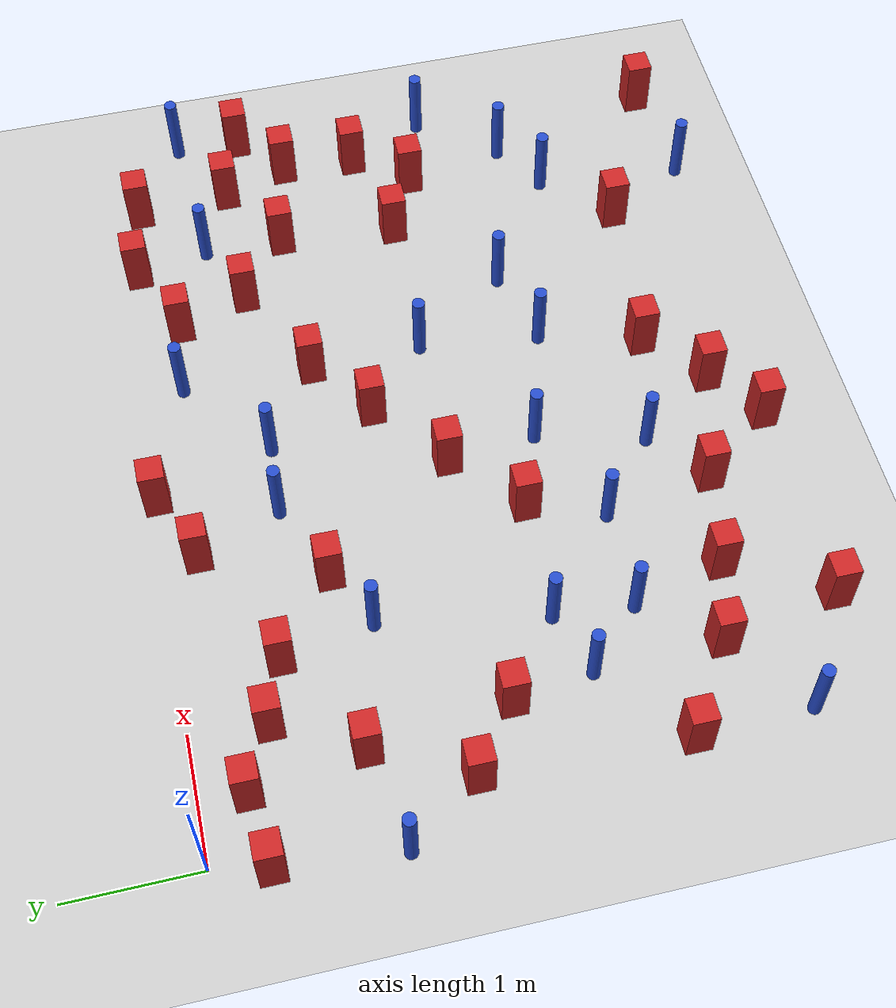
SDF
<sdf version="1.6">
 <world name="default">
  <model name="ground_plane">
   <static>1</static>
   <link name="link">
    <collision name="collision">
     <geometry><plane><normal>0 0 1</normal><size>100 100</size></plane></geometry>
     <surface><friction><ode><mu>100</mu><mu2>50</mu2></ode></friction></surface>
    </collision>
    <visual name="visual">
     <cast_shadows>0</cast_shadows>
     <geometry><plane><normal>0 0 1</normal><size>100 100</size></plane></geometry>
     <material>
      <ambient>1.0 1.0 1.0 1.0</ambient>
      <diffuse>0.8 0.8 0.8 1.0</diffuse>
      <specular>0.01 0.01 0.01 1.000000</specular>
     </material>
    </visual>
   </link>
  </model>
  <model name="square_post_obstacle2">
   <static>true</static>
   <pose>0.221696725759 -1.90196667918 8.22691968438e-08 7.2212513382e-06 -7.54495500217e-07 2.29674213826e-05</pose>
   <link name="link">
    <pose>0 0 0.25 0 -0 0</pose>
    <inertial>
     <mass>100</mass>
     <inertia>
      <ixx>0.166667</ixx>
      <ixy>0</ixy>
      <ixz>0</ixz>
      <iyy>0.166667</iyy>
      <iyz>0</iyz>
      <izz>0.166667</izz>
     </inertia>
    </inertial>
    <collision name="collision"><geometry><box><size>.2 .2 .5</size></box></geometry></collision>
    <visual name="visual">
     <geometry><box><size>.2 .2 .5</size></box></geometry>
     <material>
      <script><name>Gazebo/Red</name><uri>file://media/materials/scripts/gazebo.material</uri></script>
     </material>
    </visual>
   </link>
  </model>
  <model name="pole_obstacle10">
   <static>true</static>
   <pose>4.44744639522 -3.07453793529 2.88873142074e-08 -9.90536690245e-09 4.6021994898e-07 -1.20965994966e-07</pose>
   <link name="link">
    <pose>0 0 0.3 0 -0 0</pose>
    <inertial>
     <mass>1</mass>
     <inertia><ixx>0.145833</ixx><ixy>0</ixy><ixz>0</ixz><iyy>0.145833</iyy><iyz>0</iyz><izz>0.125</izz></inertia>
    </inertial>
    <collision name="collision">
     <geometry><cylinder><radius>0.05</radius><length>.6</length></cylinder></geometry>
    </collision>
    <visual name="visual">
     <geometry><cylinder><radius>0.05</radius><length>.6</length></cylinder></geometry>
     <material>
      <script><name>Gazebo/Blue</name><uri>file://media/materials/scripts/gazebo.material</uri></script>
     </material>
    </visual>
   </link>
  </model>
  <model name="pole_obstacle13">
   <static>true</static>
   <pose>3.20647940545 -0.969881316611 2.88873142074e-08 -9.90536689217e-09 4.60219949004e-07 -1.20965994953e-07</pose>
   <link name="link">
    <pose>0 0 0.3 0 -0 0</pose>
    <inertial>
     <mass>1</mass>
     <inertia><ixx>0.145833</ixx><ixy>0</ixy><ixz>0</ixz><iyy>0.145833</iyy><iyz>0</iyz><izz>0.125</izz></inertia>
    </inertial>
    <collision name="collision">
     <geometry><cylinder><radius>0.05</radius><length>.6</length></cylinder></geometry>
    </collision>
    <visual name="visual">
     <geometry><cylinder><radius>0.05</radius><length>.6</length></cylinder></geometry>
     <material>
      <script><name>Gazebo/Blue</name><uri>file://media/materials/scripts/gazebo.material</uri></script>
     </material>
    </visual>
   </link>
  </model>
  <model name="square_post_obstacle10">
   <static>true</static>
   <pose>3.87964929043 -1.40677528351 8.22691968438e-08 7.2212513382e-06 -7.54495500217e-07 2.29674213826e-05</pose>
   <link name="link">
    <pose>0 0 0.25 0 -0 0</pose>
    <inertial>
     <mass>100</mass>
     <inertia>
      <ixx>0.166667</ixx>
      <ixy>0</ixy>
      <ixz>0</ixz>
      <iyy>0.166667</iyy>
      <iyz>0</iyz>
      <izz>0.166667</izz>
     </inertia>
    </inertial>
    <collision name="collision"><geometry><box><size>.2 .2 .5</size></box></geometry></collision>
    <visual name="visual">
     <geometry><box><size>.2 .2 .5</size></box></geometry>
     <material>
      <script><name>Gazebo/Red</name><uri>file://media/materials/scripts/gazebo.material</uri></script>
     </material>
    </visual>
   </link>
  </model>
  <model name="square_post_obstacle13">
   <static>true</static>
   <pose>1.01495852833 -4.76390678284 8.22691968438e-08 7.2212513382e-06 -7.54495500217e-07 2.29674213826e-05</pose>
   <link name="link">
    <pose>0 0 0.25 0 -0 0</pose>
    <inertial>
     <mass>100</mass>
     <inertia>
      <ixx>0.166667</ixx>
      <ixy>0</ixy>
      <ixz>0</ixz>
      <iyy>0.166667</iyy>
      <iyz>0</iyz>
      <izz>0.166667</izz>
     </inertia>
    </inertial>
    <collision name="collision"><geometry><box><size>.2 .2 .5</size></box></geometry></collision>
    <visual name="visual">
     <geometry><box><size>.2 .2 .5</size></box></geometry>
     <material>
      <script><name>Gazebo/Red</name><uri>file://media/materials/scripts/gazebo.material</uri></script>
     </material>
    </visual>
   </link>
  </model>
  <model name="square_post_obstacle15">
   <static>true</static>
   <pose>2.78507070101 -2.26868465725 8.22691968438e-08 7.2212513382e-06 -7.54495500217e-07 2.29674213826e-05</pose>
   <link name="link">
    <pose>0 0 0.25 0 -0 0</pose>
    <inertial>
     <mass>100</mass>
     <inertia>
      <ixx>0.166667</ixx>
      <ixy>0</ixy>
      <ixz>0</ixz>
      <iyy>0.166667</iyy>
      <iyz>0</iyz>
      <izz>0.166667</izz>
     </inertia>
    </inertial>
    <collision name="collision"><geometry><box><size>.2 .2 .5</size></box></geometry></collision>
    <visual name="visual">
     <geometry><box><size>.2 .2 .5</size></box></geometry>
     <material>
      <script><name>Gazebo/Red</name><uri>file://media/materials/scripts/gazebo.material</uri></script>
     </material>
    </visual>
   </link>
  </model>
  <model name="pole_obstacle22">
   <static>true</static>
   <pose>1.30878013132 -2.71242042378 2.88873142074e-08 -9.90536689791e-09 4.6021994899e-07 -1.20965994959e-07</pose>
   <link name="link">
    <pose>0 0 0.3 0 -0 0</pose>
    <inertial>
     <mass>1</mass>
     <inertia><ixx>0.145833</ixx><ixy>0</ixy><ixz>0</ixz><iyy>0.145833</iyy><iyz>0</iyz><izz>0.125</izz></inertia>
    </inertial>
    <collision name="collision">
     <geometry><cylinder><radius>0.05</radius><length>.6</length></cylinder></geometry>
    </collision>
    <visual name="visual">
     <geometry><cylinder><radius>0.05</radius><length>.6</length></cylinder></geometry>
     <material>
      <script><name>Gazebo/Blue</name><uri>file://media/materials/scripts/gazebo.material</uri></script>
     </material>
    </visual>
   </link>
  </model>
  <model name="pole_obstacle23">
   <static>true</static>
   <pose>3.92016130045 -0.384027470345 2.88873142074e-08 -9.90536689307e-09 4.60219949002e-07 -1.20965994954e-07</pose>
   <link name="link">
    <pose>0 0 0.3 0 -0 0</pose>
    <inertial>
     <mass>1</mass>
     <inertia><ixx>0.145833</ixx><ixy>0</ixy><ixz>0</ixz><iyy>0.145833</iyy><iyz>0</iyz><izz>0.125</izz></inertia>
    </inertial>
    <collision name="collision">
     <geometry><cylinder><radius>0.05</radius><length>.6</length></cylinder></geometry>
    </collision>
    <visual name="visual">
     <geometry><cylinder><radius>0.05</radius><length>.6</length></cylinder></geometry>
     <material>
      <script><name>Gazebo/Blue</name><uri>file://media/materials/scripts/gazebo.material</uri></script>
     </material>
    </visual>
   </link>
  </model>
  <model name="pole_obstacle28">
   <static>true</static>
   <pose>0.811466825566 -2.88347436311 2.88873142074e-08 -9.90536689636e-09 4.60219948994e-07 -1.20965994958e-07</pose>
   <link name="link">
    <pose>0 0 0.3 0 -0 0</pose>
    <inertial>
     <mass>1</mass>
     <inertia><ixx>0.145833</ixx><ixy>0</ixy><ixz>0</ixz><iyy>0.145833</iyy><iyz>0</iyz><izz>0.125</izz></inertia>
    </inertial>
    <collision name="collision">
     <geometry><cylinder><radius>0.05</radius><length>.6</length></cylinder></geometry>
    </collision>
    <visual name="visual">
     <geometry><cylinder><radius>0.05</radius><length>.6</length></cylinder></geometry>
     <material>
      <script><name>Gazebo/Blue</name><uri>file://media/materials/scripts/gazebo.material</uri></script>
     </material>
    </visual>
   </link>
  </model>
  <model name="square_post_obstacle25">
   <static>true</static>
   <pose>0.166305199922 -3.43480673049 8.22691968438e-08 7.2212513382e-06 -7.54495500217e-07 2.29674213826e-05</pose>
   <link name="link">
    <pose>0 0 0.25 0 -0 0</pose>
    <inertial>
     <mass>100</mass>
     <inertia>
      <ixx>0.166667</ixx>
      <ixy>0</ixy>
      <ixz>0</ixz>
      <iyy>0.166667</iyy>
      <iyz>0</iyz>
      <izz>0.166667</izz>
     </inertia>
    </inertial>
    <collision name="collision"><geometry><box><size>.2 .2 .5</size></box></geometry></collision>
    <visual name="visual">
     <geometry><box><size>.2 .2 .5</size></box></geometry>
     <material>
      <script><name>Gazebo/Red</name><uri>file://media/materials/scripts/gazebo.material</uri></script>
     </material>
    </visual>
   </link>
  </model>
  <model name="square_post_obstacle27">
   <static>true</static>
   <pose>0.830600635842 -3.84449933875 8.22691968438e-08 7.2212513382e-06 -7.54495500217e-07 2.29674213826e-05</pose>
   <link name="link">
    <pose>0 0 0.25 0 -0 0</pose>
    <inertial>
     <mass>100</mass>
     <inertia>
      <ixx>0.166667</ixx>
      <ixy>0</ixy>
      <ixz>0</ixz>
      <iyy>0.166667</iyy>
      <iyz>0</iyz>
      <izz>0.166667</izz>
     </inertia>
    </inertial>
    <collision name="collision"><geometry><box><size>.2 .2 .5</size></box></geometry></collision>
    <visual name="visual">
     <geometry><box><size>.2 .2 .5</size></box></geometry>
     <material>
      <script><name>Gazebo/Red</name><uri>file://media/materials/scripts/gazebo.material</uri></script>
     </material>
    </visual>
   </link>
  </model>
  <model name="square_post_obstacle29">
   <static>true</static>
   <pose>5.85678291339 -1.02913637126 8.22691968438e-08 7.2212513382e-06 -7.54495500217e-07 2.29674213826e-05</pose>
   <link name="link">
    <pose>0 0 0.25 0 -0 0</pose>
    <inertial>
     <mass>100</mass>
     <inertia>
      <ixx>0.166667</ixx>
      <ixy>0</ixy>
      <ixz>0</ixz>
      <iyy>0.166667</iyy>
      <iyz>0</iyz>
      <izz>0.166667</izz>
     </inertia>
    </inertial>
    <collision name="collision"><geometry><box><size>.2 .2 .5</size></box></geometry></collision>
    <visual name="visual">
     <geometry><box><size>.2 .2 .5</size></box></geometry>
     <material>
      <script><name>Gazebo/Red</name><uri>file://media/materials/scripts/gazebo.material</uri></script>
     </material>
    </visual>
   </link>
  </model>
  <model name="pole_obstacle42">
   <static>true</static>
   <pose>5.28140339499 -0.765569922579 2.88873142074e-08 -9.90536689837e-09 4.60219948989e-07 -1.2096599496e-07</pose>
   <link name="link">
    <pose>0 0 0.3 0 -0 0</pose>
    <inertial>
     <mass>1</mass>
     <inertia><ixx>0.145833</ixx><ixy>0</ixy><ixz>0</ixz><iyy>0.145833</iyy><iyz>0</iyz><izz>0.125</izz></inertia>
    </inertial>
    <collision name="collision">
     <geometry><cylinder><radius>0.05</radius><length>.6</length></cylinder></geometry>
    </collision>
    <visual name="visual">
     <geometry><cylinder><radius>0.05</radius><length>.6</length></cylinder></geometry>
     <material>
      <script><name>Gazebo/Blue</name><uri>file://media/materials/scripts/gazebo.material</uri></script>
     </material>
    </visual>
   </link>
  </model>
  <model name="square_post_obstacle32">
   <static>true</static>
   <pose>6.00994409245 -2.15194811357 8.22691968438e-08 7.2212513382e-06 -7.54495500217e-07 2.29674213826e-05</pose>
   <link name="link">
    <pose>0 0 0.25 0 -0 0</pose>
    <inertial>
     <mass>100</mass>
     <inertia>
      <ixx>0.166667</ixx>
      <ixy>0</ixy>
      <ixz>0</ixz>
      <iyy>0.166667</iyy>
      <iyz>0</iyz>
      <izz>0.166667</izz>
     </inertia>
    </inertial>
    <collision name="collision"><geometry><box><size>.2 .2 .5</size></box></geometry></collision>
    <visual name="visual">
     <geometry><box><size>.2 .2 .5</size></box></geometry>
     <material>
      <script><name>Gazebo/Red</name><uri>file://media/materials/scripts/gazebo.material</uri></script>
     </material>
    </visual>
   </link>
  </model>
  <model name="square_post_obstacle36">
   <static>true</static>
   <pose>2.65250312018 -4.7603489703 8.22691968438e-08 7.22125133819e-06 -7.54495500217e-07 2.29674213826e-05</pose>
   <link name="link">
    <pose>0 0 0.25 0 -0 0</pose>
    <inertial>
     <mass>100</mass>
     <inertia>
      <ixx>0.166667</ixx>
      <ixy>0</ixy>
      <ixz>0</ixz>
      <iyy>0.166667</iyy>
      <iyz>0</iyz>
      <izz>0.166667</izz>
     </inertia>
    </inertial>
    <collision name="collision"><geometry><box><size>.2 .2 .5</size></box></geometry></collision>
    <visual name="visual">
     <geometry><box><size>.2 .2 .5</size></box></geometry>
     <material>
      <script><name>Gazebo/Red</name><uri>file://media/materials/scripts/gazebo.material</uri></script>
     </material>
    </visual>
   </link>
  </model>
  <model name="square_post_obstacle43">
   <static>true</static>
   <pose>3.09585587317 -4.44070377407 8.22691968438e-08 7.22125133819e-06 -7.54495500217e-07 2.29674213826e-05</pose>
   <link name="link">
    <pose>0 0 0.25 0 -0 0</pose>
    <inertial>
     <mass>100</mass>
     <inertia>
      <ixx>0.166667</ixx>
      <ixy>0</ixy>
      <ixz>0</ixz>
      <iyy>0.166667</iyy>
      <iyz>0</iyz>
      <izz>0.166667</izz>
     </inertia>
    </inertial>
    <collision name="collision"><geometry><box><size>.2 .2 .5</size></box></geometry></collision>
    <visual name="visual">
     <geometry><box><size>.2 .2 .5</size></box></geometry>
     <material>
      <script><name>Gazebo/Red</name><uri>file://media/materials/scripts/gazebo.material</uri></script>
     </material>
    </visual>
   </link>
  </model>
  <model name="pole_obstacle57">
   <static>true</static>
   <pose>5.84670499186 -3.41439952924 2.88873142074e-08 -9.90536690245e-09 4.6021994898e-07 -1.20965994966e-07</pose>
   <link name="link">
    <pose>0 0 0.3 0 -0 0</pose>
    <inertial>
     <mass>1</mass>
     <inertia><ixx>0.145833</ixx><ixy>0</ixy><ixz>0</ixz><iyy>0.145833</iyy><iyz>0</iyz><izz>0.125</izz></inertia>
    </inertial>
    <collision name="collision">
     <geometry><cylinder><radius>0.05</radius><length>.6</length></cylinder></geometry>
    </collision>
    <visual name="visual">
     <geometry><cylinder><radius>0.05</radius><length>.6</length></cylinder></geometry>
     <material>
      <script><name>Gazebo/Blue</name><uri>file://media/materials/scripts/gazebo.material</uri></script>
     </material>
    </visual>
   </link>
  </model>
  <model name="square_post_obstacle58">
   <static>true</static>
   <pose>5.80784810153 -0.286426129212 8.22691968438e-08 7.2212513382e-06 -7.54495500217e-07 2.29674213826e-05</pose>
   <link name="link">
    <pose>0 0 0.25 0 -0 0</pose>
    <inertial>
     <mass>100</mass>
     <inertia>
      <ixx>0.166667</ixx>
      <ixy>0</ixy>
      <ixz>0</ixz>
      <iyy>0.166667</iyy>
      <iyz>0</iyz>
      <izz>0.166667</izz>
     </inertia>
    </inertial>
    <collision name="collision"><geometry><box><size>.2 .2 .5</size></box></geometry></collision>
    <visual name="visual">
     <geometry><box><size>.2 .2 .5</size></box></geometry>
     <material>
      <script><name>Gazebo/Red</name><uri>file://media/materials/scripts/gazebo.material</uri></script>
     </material>
    </visual>
   </link>
  </model>
  <model name="square_post_obstacle65">
   <static>true</static>
   <pose>2.19465060153 -4.17465338669 8.22691968438e-08 7.22125133819e-06 -7.54495500217e-07 2.29674213826e-05</pose>
   <link name="link">
    <pose>0 0 0.25 0 -0 0</pose>
    <inertial>
     <mass>100</mass>
     <inertia>
      <ixx>0.166667</ixx>
      <ixy>0</ixy>
      <ixz>0</ixz>
      <iyy>0.166667</iyy>
      <iyz>0</iyz>
      <izz>0.166667</izz>
     </inertia>
    </inertial>
    <collision name="collision"><geometry><box><size>.2 .2 .5</size></box></geometry></collision>
    <visual name="visual">
     <geometry><box><size>.2 .2 .5</size></box></geometry>
     <material>
      <script><name>Gazebo/Red</name><uri>file://media/materials/scripts/gazebo.material</uri></script>
     </material>
    </visual>
   </link>
  </model>
  <model name="square_post_obstacle74">
   <static>true</static>
   <pose>2.9303197492 -0.0503939318438 8.22691968438e-08 7.2212513382e-06 -7.54495500217e-07 2.29674213826e-05</pose>
   <link name="link">
    <pose>0 0 0.25 0 -0 0</pose>
    <inertial>
     <mass>100</mass>
     <inertia>
      <ixx>0.166667</ixx>
      <ixy>0</ixy>
      <ixz>0</ixz>
      <iyy>0.166667</iyy>
      <iyz>0</iyz>
      <izz>0.166667</izz>
     </inertia>
    </inertial>
    <collision name="collision"><geometry><box><size>.2 .2 .5</size></box></geometry></collision>
    <visual name="visual">
     <geometry><box><size>.2 .2 .5</size></box></geometry>
     <material>
      <script><name>Gazebo/Red</name><uri>file://media/materials/scripts/gazebo.material</uri></script>
     </material>
    </visual>
   </link>
  </model>
  <model name="square_post_obstacle77">
   <static>true</static>
   <pose>3.37311689947 -1.79389922679 8.22691968438e-08 7.2212513382e-06 -7.54495500217e-07 2.29674213826e-05</pose>
   <link name="link">
    <pose>0 0 0.25 0 -0 0</pose>
    <inertial>
     <mass>100</mass>
     <inertia>
      <ixx>0.166667</ixx>
      <ixy>0</ixy>
      <ixz>0</ixz>
      <iyy>0.166667</iyy>
      <iyz>0</iyz>
      <izz>0.166667</izz>
     </inertia>
    </inertial>
    <collision name="collision"><geometry><box><size>.2 .2 .5</size></box></geometry></collision>
    <visual name="visual">
     <geometry><box><size>.2 .2 .5</size></box></geometry>
     <material>
      <script><name>Gazebo/Red</name><uri>file://media/materials/scripts/gazebo.material</uri></script>
     </material>
    </visual>
   </link>
  </model>
  <model name="square_post_obstacle105">
   <static>true</static>
   <pose>0.582364051498 -1.19817092457 8.22691968438e-08 7.2212513382e-06 -7.54495500217e-07 2.29674213826e-05</pose>
   <link name="link">
    <pose>0 0 0.25 0 -0 0</pose>
    <inertial>
     <mass>100</mass>
     <inertia>
      <ixx>0.166667</ixx>
      <ixy>0</ixy>
      <ixz>0</ixz>
      <iyy>0.166667</iyy>
      <iyz>0</iyz>
      <izz>0.166667</izz>
     </inertia>
    </inertial>
    <collision name="collision"><geometry><box><size>.2 .2 .5</size></box></geometry></collision>
    <visual name="visual">
     <geometry><box><size>.2 .2 .5</size></box></geometry>
     <material>
      <script><name>Gazebo/Red</name><uri>file://media/materials/scripts/gazebo.material</uri></script>
     </material>
    </visual>
   </link>
  </model>
  <model name="pole_obstacle111">
   <static>true</static>
   <pose>3.79788021907 -3.25358248323 2.88873142074e-08 -9.90536690232e-09 4.6021994898e-07 -1.20965994968e-07</pose>
   <link name="link">
    <pose>0 0 0.3 0 -0 0</pose>
    <inertial>
     <mass>1</mass>
     <inertia><ixx>0.145833</ixx><ixy>0</ixy><ixz>0</ixz><iyy>0.145833</iyy><iyz>0</iyz><izz>0.125</izz></inertia>
    </inertial>
    <collision name="collision">
     <geometry><cylinder><radius>0.05</radius><length>.6</length></cylinder></geometry>
    </collision>
    <visual name="visual">
     <geometry><cylinder><radius>0.05</radius><length>.6</length></cylinder></geometry>
     <material>
      <script><name>Gazebo/Blue</name><uri>file://media/materials/scripts/gazebo.material</uri></script>
     </material>
    </visual>
   </link>
  </model>
  <model name="square_post_obstacle106">
   <static>true</static>
   <pose>6.1894856688 -4.75824440381 8.22691968438e-08 7.2212513382e-06 -7.54495500217e-07 2.29674213826e-05</pose>
   <link name="link">
    <pose>0 0 0.25 0 -0 0</pose>
    <inertial>
     <mass>100</mass>
     <inertia>
      <ixx>0.166667</ixx>
      <ixy>0</ixy>
      <ixz>0</ixz>
      <iyy>0.166667</iyy>
      <iyz>0</iyz>
      <izz>0.166667</izz>
     </inertia>
    </inertial>
    <collision name="collision"><geometry><box><size>.2 .2 .5</size></box></geometry></collision>
    <visual name="visual">
     <geometry><box><size>.2 .2 .5</size></box></geometry>
     <material>
      <script><name>Gazebo/Red</name><uri>file://media/materials/scripts/gazebo.material</uri></script>
     </material>
    </visual>
   </link>
  </model>
  <model name="square_post_obstacle113">
   <static>true</static>
   <pose>1.44450811187 -4.02098398119 8.22691968438e-08 7.2212513382e-06 -7.54495500217e-07 2.29674213826e-05</pose>
   <link name="link">
    <pose>0 0 0.25 0 -0 0</pose>
    <inertial>
     <mass>100</mass>
     <inertia>
      <ixx>0.166667</ixx>
      <ixy>0</ixy>
      <ixz>0</ixz>
      <iyy>0.166667</iyy>
      <iyz>0</iyz>
      <izz>0.166667</izz>
     </inertia>
    </inertial>
    <collision name="collision"><geometry><box><size>.2 .2 .5</size></box></geometry></collision>
    <visual name="visual">
     <geometry><box><size>.2 .2 .5</size></box></geometry>
     <material>
      <script><name>Gazebo/Red</name><uri>file://media/materials/scripts/gazebo.material</uri></script>
     </material>
    </visual>
   </link>
  </model>
  <model name="square_post_obstacle114">
   <static>true</static>
   <pose>2.00074187929 -1.20188396415 8.22691968438e-08 7.2212513382e-06 -7.54495500217e-07 2.29674213826e-05</pose>
   <link name="link">
    <pose>0 0 0.25 0 -0 0</pose>
    <inertial>
     <mass>100</mass>
     <inertia>
      <ixx>0.166667</ixx>
      <ixy>0</ixy>
      <ixz>0</ixz>
      <iyy>0.166667</iyy>
      <iyz>0</iyz>
      <izz>0.166667</izz>
     </inertia>
    </inertial>
    <collision name="collision"><geometry><box><size>.2 .2 .5</size></box></geometry></collision>
    <visual name="visual">
     <geometry><box><size>.2 .2 .5</size></box></geometry>
     <material>
      <script><name>Gazebo/Red</name><uri>file://media/materials/scripts/gazebo.material</uri></script>
     </material>
    </visual>
   </link>
  </model>
  <model name="square_post_obstacle115">
   <static>true</static>
   <pose>5.24961079246 -1.40252046274 8.22691968438e-08 7.2212513382e-06 -7.54495500217e-07 2.29674213826e-05</pose>
   <link name="link">
    <pose>0 0 0.25 0 -0 0</pose>
    <inertial>
     <mass>100</mass>
     <inertia>
      <ixx>0.166667</ixx>
      <ixy>0</ixy>
      <ixz>0</ixz>
      <iyy>0.166667</iyy>
      <iyz>0</iyz>
      <izz>0.166667</izz>
     </inertia>
    </inertial>
    <collision name="collision"><geometry><box><size>.2 .2 .5</size></box></geometry></collision>
    <visual name="visual">
     <geometry><box><size>.2 .2 .5</size></box></geometry>
     <material>
      <script><name>Gazebo/Red</name><uri>file://media/materials/scripts/gazebo.material</uri></script>
     </material>
    </visual>
   </link>
  </model>
  <model name="pole_obstacle123">
   <static>true</static>
   <pose>2.86610676553 -2.97985032487 2.88873142074e-08 -9.90536690232e-09 4.6021994898e-07 -1.20965994968e-07</pose>
   <link name="link">
    <pose>0 0 0.3 0 -0 0</pose>
    <inertial>
     <mass>1</mass>
     <inertia><ixx>0.145833</ixx><ixy>0</ixy><ixz>0</ixz><iyy>0.145833</iyy><iyz>0</iyz><izz>0.125</izz></inertia>
    </inertial>
    <collision name="collision">
     <geometry><cylinder><radius>0.05</radius><length>.6</length></cylinder></geometry>
    </collision>
    <visual name="visual">
     <geometry><cylinder><radius>0.05</radius><length>.6</length></cylinder></geometry>
     <material>
      <script><name>Gazebo/Blue</name><uri>file://media/materials/scripts/gazebo.material</uri></script>
     </material>
    </visual>
   </link>
  </model>
  <model name="pole_obstacle124">
   <static>true</static>
   <pose>1.54351494037 -1.43942092355 2.88873142074e-08 -9.90536689672e-09 4.60219948993e-07 -1.20965994959e-07</pose>
   <link name="link">
    <pose>0 0 0.3 0 -0 0</pose>
    <inertial>
     <mass>1</mass>
     <inertia><ixx>0.145833</ixx><ixy>0</ixy><ixz>0</ixz><iyy>0.145833</iyy><iyz>0</iyz><izz>0.125</izz></inertia>
    </inertial>
    <collision name="collision">
     <geometry><cylinder><radius>0.05</radius><length>.6</length></cylinder></geometry>
    </collision>
    <visual name="visual">
     <geometry><cylinder><radius>0.05</radius><length>.6</length></cylinder></geometry>
     <material>
      <script><name>Gazebo/Blue</name><uri>file://media/materials/scripts/gazebo.material</uri></script>
     </material>
    </visual>
   </link>
  </model>
  <model name="square_post_obstacle131">
   <static>true</static>
   <pose>4.51902779913 -0.45291762828 8.22691968438e-08 7.2212513382e-06 -7.54495500217e-07 2.29674213826e-05</pose>
   <link name="link">
    <pose>0 0 0.25 0 -0 0</pose>
    <inertial>
     <mass>100</mass>
     <inertia>
      <ixx>0.166667</ixx>
      <ixy>0</ixy>
      <ixz>0</ixz>
      <iyy>0.166667</iyy>
      <iyz>0</iyz>
      <izz>0.166667</izz>
     </inertia>
    </inertial>
    <collision name="collision"><geometry><box><size>.2 .2 .5</size></box></geometry></collision>
    <visual name="visual">
     <geometry><box><size>.2 .2 .5</size></box></geometry>
     <material>
      <script><name>Gazebo/Red</name><uri>file://media/materials/scripts/gazebo.material</uri></script>
     </material>
    </visual>
   </link>
  </model>
  <model name="pole_obstacle138">
   <static>true</static>
   <pose>6.48682149479 -0.697818769324 2.88873142074e-08 -9.90536689837e-09 4.60219948989e-07 -1.2096599496e-07</pose>
   <link name="link">
    <pose>0 0 0.3 0 -0 0</pose>
    <inertial>
     <mass>1</mass>
     <inertia><ixx>0.145833</ixx><ixy>0</ixy><ixz>0</ixz><iyy>0.145833</iyy><iyz>0</iyz><izz>0.125</izz></inertia>
    </inertial>
    <collision name="collision">
     <geometry><cylinder><radius>0.05</radius><length>.6</length></cylinder></geometry>
    </collision>
    <visual name="visual">
     <geometry><cylinder><radius>0.05</radius><length>.6</length></cylinder></geometry>
     <material>
      <script><name>Gazebo/Blue</name><uri>file://media/materials/scripts/gazebo.material</uri></script>
     </material>
    </visual>
   </link>
  </model>
  <model name="square_post_obstacle136">
   <static>true</static>
   <pose>5.68326928076 -2.58777643879 8.22691968438e-08 7.2212513382e-06 -7.54495500217e-07 2.29674213826e-05</pose>
   <link name="link">
    <pose>0 0 0.25 0 -0 0</pose>
    <inertial>
     <mass>100</mass>
     <inertia>
      <ixx>0.166667</ixx>
      <ixy>0</ixy>
      <ixz>0</ixz>
      <iyy>0.166667</iyy>
      <iyz>0</iyz>
      <izz>0.166667</izz>
     </inertia>
    </inertial>
    <collision name="collision"><geometry><box><size>.2 .2 .5</size></box></geometry></collision>
    <visual name="visual">
     <geometry><box><size>.2 .2 .5</size></box></geometry>
     <material>
      <script><name>Gazebo/Red</name><uri>file://media/materials/scripts/gazebo.material</uri></script>
     </material>
    </visual>
   </link>
  </model>
  <model name="square_post_obstacle139">
   <static>true</static>
   <pose>0.716136669484 -2.26138801194 8.22691968438e-08 7.2212513382e-06 -7.54495500217e-07 2.29674213826e-05</pose>
   <link name="link">
    <pose>0 0 0.25 0 -0 0</pose>
    <inertial>
     <mass>100</mass>
     <inertia>
      <ixx>0.166667</ixx>
      <ixy>0</ixy>
      <ixz>0</ixz>
      <iyy>0.166667</iyy>
      <iyz>0</iyz>
      <izz>0.166667</izz>
     </inertia>
    </inertial>
    <collision name="collision"><geometry><box><size>.2 .2 .5</size></box></geometry></collision>
    <visual name="visual">
     <geometry><box><size>.2 .2 .5</size></box></geometry>
     <material>
      <script><name>Gazebo/Red</name><uri>file://media/materials/scripts/gazebo.material</uri></script>
     </material>
    </visual>
   </link>
  </model>
  <model name="square_post_obstacle144">
   <static>true</static>
   <pose>2.25584475896 -2.7462883628 8.22691968438e-08 7.2212513382e-06 -7.54495500217e-07 2.29674213826e-05</pose>
   <link name="link">
    <pose>0 0 0.25 0 -0 0</pose>
    <inertial>
     <mass>100</mass>
     <inertia>
      <ixx>0.166667</ixx>
      <ixy>0</ixy>
      <ixz>0</ixz>
      <iyy>0.166667</iyy>
      <iyz>0</iyz>
      <izz>0.166667</izz>
     </inertia>
    </inertial>
    <collision name="collision"><geometry><box><size>.2 .2 .5</size></box></geometry></collision>
    <visual name="visual">
     <geometry><box><size>.2 .2 .5</size></box></geometry>
     <material>
      <script><name>Gazebo/Red</name><uri>file://media/materials/scripts/gazebo.material</uri></script>
     </material>
    </visual>
   </link>
  </model>
  <model name="square_post_obstacle148">
   <static>true</static>
   <pose>4.71403665073 -1.00902836665 8.22691968438e-08 7.2212513382e-06 -7.54495500217e-07 2.29674213826e-05</pose>
   <link name="link">
    <pose>0 0 0.25 0 -0 0</pose>
    <inertial>
     <mass>100</mass>
     <inertia>
      <ixx>0.166667</ixx>
      <ixy>0</ixy>
      <ixz>0</ixz>
      <iyy>0.166667</iyy>
      <iyz>0</iyz>
      <izz>0.166667</izz>
     </inertia>
    </inertial>
    <collision name="collision"><geometry><box><size>.2 .2 .5</size></box></geometry></collision>
    <visual name="visual">
     <geometry><box><size>.2 .2 .5</size></box></geometry>
     <material>
      <script><name>Gazebo/Red</name><uri>file://media/materials/scripts/gazebo.material</uri></script>
     </material>
    </visual>
   </link>
  </model>
  <model name="square_post_obstacle149">
   <static>true</static>
   <pose>4.91745936443 -4.18810105361 8.22691968438e-08 7.2212513382e-06 -7.54495500217e-07 2.29674213826e-05</pose>
   <link name="link">
    <pose>0 0 0.25 0 -0 0</pose>
    <inertial>
     <mass>100</mass>
     <inertia>
      <ixx>0.166667</ixx>
      <ixy>0</ixy>
      <ixz>0</ixz>
      <iyy>0.166667</iyy>
      <iyz>0</iyz>
      <izz>0.166667</izz>
     </inertia>
    </inertial>
    <collision name="collision"><geometry><box><size>.2 .2 .5</size></box></geometry></collision>
    <visual name="visual">
     <geometry><box><size>.2 .2 .5</size></box></geometry>
     <material>
      <script><name>Gazebo/Red</name><uri>file://media/materials/scripts/gazebo.material</uri></script>
     </material>
    </visual>
   </link>
  </model>
  <model name="pole_obstacle155">
   <static>true</static>
   <pose>2.63786565152 -0.934307538385 2.88873142074e-08 -9.90536689285e-09 4.60219949002e-07 -1.20965994953e-07</pose>
   <link name="link">
    <pose>0 0 0.3 0 -0 0</pose>
    <inertial>
     <mass>1</mass>
     <inertia><ixx>0.145833</ixx><ixy>0</ixy><ixz>0</ixz><iyy>0.145833</iyy><iyz>0</iyz><izz>0.125</izz></inertia>
    </inertial>
    <collision name="collision">
     <geometry><cylinder><radius>0.05</radius><length>.6</length></cylinder></geometry>
    </collision>
    <visual name="visual">
     <geometry><cylinder><radius>0.05</radius><length>.6</length></cylinder></geometry>
     <material>
      <script><name>Gazebo/Blue</name><uri>file://media/materials/scripts/gazebo.material</uri></script>
     </material>
    </visual>
   </link>
  </model>
  <model name="pole_obstacle158">
   <static>true</static>
   <pose>-0.181271678866 -1.34311170385 2.88873142074e-08 -9.90536689666e-09 4.60219948993e-07 -1.20965994958e-07</pose>
   <link name="link">
    <pose>0 0 0.3 0 -0 0</pose>
    <inertial>
     <mass>1</mass>
     <inertia><ixx>0.145833</ixx><ixy>0</ixy><ixz>0</ixz><iyy>0.145833</iyy><iyz>0</iyz><izz>0.125</izz></inertia>
    </inertial>
    <collision name="collision">
     <geometry><cylinder><radius>0.05</radius><length>.6</length></cylinder></geometry>
    </collision>
    <visual name="visual">
     <geometry><cylinder><radius>0.05</radius><length>.6</length></cylinder></geometry>
     <material>
      <script><name>Gazebo/Blue</name><uri>file://media/materials/scripts/gazebo.material</uri></script>
     </material>
    </visual>
   </link>
  </model>
  <model name="pole_obstacle160">
   <static>true</static>
   <pose>2.64158265085 -3.81976203589 2.88873142074e-08 -9.90536690232e-09 4.6021994898e-07 -1.20965994968e-07</pose>
   <link name="link">
    <pose>0 0 0.3 0 -0 0</pose>
    <inertial>
     <mass>1</mass>
     <inertia><ixx>0.145833</ixx><ixy>0</ixy><ixz>0</ixz><iyy>0.145833</iyy><iyz>0</iyz><izz>0.125</izz></inertia>
    </inertial>
    <collision name="collision">
     <geometry><cylinder><radius>0.05</radius><length>.6</length></cylinder></geometry>
    </collision>
    <visual name="visual">
     <geometry><cylinder><radius>0.05</radius><length>.6</length></cylinder></geometry>
     <material>
      <script><name>Gazebo/Blue</name><uri>file://media/materials/scripts/gazebo.material</uri></script>
     </material>
    </visual>
   </link>
  </model>
  <model name="square_post_obstacle165">
   <static>true</static>
   <pose>3.5611774992 -4.03857598353 8.22691968438e-08 7.2212513382e-06 -7.54495500217e-07 2.29674213826e-05</pose>
   <link name="link">
    <pose>0 0 0.25 0 -0 0</pose>
    <inertial>
     <mass>100</mass>
     <inertia>
      <ixx>0.166667</ixx>
      <ixy>0</ixy>
      <ixz>0</ixz>
      <iyy>0.166667</iyy>
      <iyz>0</iyz>
      <izz>0.166667</izz>
     </inertia>
    </inertial>
    <collision name="collision"><geometry><box><size>.2 .2 .5</size></box></geometry></collision>
    <visual name="visual">
     <geometry><box><size>.2 .2 .5</size></box></geometry>
     <material>
      <script><name>Gazebo/Red</name><uri>file://media/materials/scripts/gazebo.material</uri></script>
     </material>
    </visual>
   </link>
  </model>
  <model name="square_post_obstacle168">
   <static>true</static>
   <pose>0.922980692725 -0.573208600753 8.22691968438e-08 7.2212513382e-06 -7.54495500217e-07 2.29674213826e-05</pose>
   <link name="link">
    <pose>0 0 0.25 0 -0 0</pose>
    <inertial>
     <mass>100</mass>
     <inertia>
      <ixx>0.166667</ixx>
      <ixy>0</ixy>
      <ixz>0</ixz>
      <iyy>0.166667</iyy>
      <iyz>0</iyz>
      <izz>0.166667</izz>
     </inertia>
    </inertial>
    <collision name="collision"><geometry><box><size>.2 .2 .5</size></box></geometry></collision>
    <visual name="visual">
     <geometry><box><size>.2 .2 .5</size></box></geometry>
     <material>
      <script><name>Gazebo/Red</name><uri>file://media/materials/scripts/gazebo.material</uri></script>
     </material>
    </visual>
   </link>
  </model>
  <model name="pole_obstacle172">
   <static>true</static>
   <pose>2.04710958424 -3.3354388443 2.88873142074e-08 -9.9053669043e-09 4.60219948975e-07 -1.2096599497e-07</pose>
   <link name="link">
    <pose>0 0 0.3 0 -0 0</pose>
    <inertial>
     <mass>1</mass>
     <inertia><ixx>0.145833</ixx><ixy>0</ixy><ixz>0</ixz><iyy>0.145833</iyy><iyz>0</iyz><izz>0.125</izz></inertia>
    </inertial>
    <collision name="collision">
     <geometry><cylinder><radius>0.05</radius><length>.6</length></cylinder></geometry>
    </collision>
    <visual name="visual">
     <geometry><cylinder><radius>0.05</radius><length>.6</length></cylinder></geometry>
     <material>
      <script><name>Gazebo/Blue</name><uri>file://media/materials/scripts/gazebo.material</uri></script>
     </material>
    </visual>
   </link>
  </model>
  <model name="pole_obstacle175">
   <static>true</static>
   <pose>1.25847237358 -3.32038193484 2.88873142074e-08 -9.90536689791e-09 4.6021994899e-07 -1.20965994959e-07</pose>
   <link name="link">
    <pose>0 0 0.3 0 -0 0</pose>
    <inertial>
     <mass>1</mass>
     <inertia><ixx>0.145833</ixx><ixy>0</ixy><ixz>0</ixz><iyy>0.145833</iyy><iyz>0</iyz><izz>0.125</izz></inertia>
    </inertial>
    <collision name="collision">
     <geometry><cylinder><radius>0.05</radius><length>.6</length></cylinder></geometry>
    </collision>
    <visual name="visual">
     <geometry><cylinder><radius>0.05</radius><length>.6</length></cylinder></geometry>
     <material>
      <script><name>Gazebo/Blue</name><uri>file://media/materials/scripts/gazebo.material</uri></script>
     </material>
    </visual>
   </link>
  </model>
  <model name="pole_obstacle176">
   <static>true</static>
   <pose>3.91424641323 -2.29832447065 2.88873142074e-08 -9.90536690232e-09 4.6021994898e-07 -1.20965994968e-07</pose>
   <link name="link">
    <pose>0 0 0.3 0 -0 0</pose>
    <inertial>
     <mass>1</mass>
     <inertia><ixx>0.145833</ixx><ixy>0</ixy><ixz>0</ixz><iyy>0.145833</iyy><iyz>0</iyz><izz>0.125</izz></inertia>
    </inertial>
    <collision name="collision">
     <geometry><cylinder><radius>0.05</radius><length>.6</length></cylinder></geometry>
    </collision>
    <visual name="visual">
     <geometry><cylinder><radius>0.05</radius><length>.6</length></cylinder></geometry>
     <material>
      <script><name>Gazebo/Blue</name><uri>file://media/materials/scripts/gazebo.material</uri></script>
     </material>
    </visual>
   </link>
  </model>
  <model name="square_post_obstacle183">
   <static>true</static>
   <pose>5.15199504203 -0.190140890217 8.22691968438e-08 7.2212513382e-06 -7.54495500217e-07 2.29674213826e-05</pose>
   <link name="link">
    <pose>0 0 0.25 0 -0 0</pose>
    <inertial>
     <mass>100</mass>
     <inertia>
      <ixx>0.166667</ixx>
      <ixy>0</ixy>
      <ixz>0</ixz>
      <iyy>0.166667</iyy>
      <iyz>0</iyz>
      <izz>0.166667</izz>
     </inertia>
    </inertial>
    <collision name="collision"><geometry><box><size>.2 .2 .5</size></box></geometry></collision>
    <visual name="visual">
     <geometry><box><size>.2 .2 .5</size></box></geometry>
     <material>
      <script><name>Gazebo/Red</name><uri>file://media/materials/scripts/gazebo.material</uri></script>
     </material>
    </visual>
   </link>
  </model>
  <model name="pole_obstacle184">
   <static>true</static>
   <pose>6.31834777058 -2.79126300844 2.88873142074e-08 -9.90536690245e-09 4.6021994898e-07 -1.20965994966e-07</pose>
   <link name="link">
    <pose>0 0 0.3 0 -0 0</pose>
    <inertial>
     <mass>1</mass>
     <inertia><ixx>0.145833</ixx><ixy>0</ixy><ixz>0</ixz><iyy>0.145833</iyy><iyz>0</iyz><izz>0.125</izz></inertia>
    </inertial>
    <collision name="collision">
     <geometry><cylinder><radius>0.05</radius><length>.6</length></cylinder></geometry>
    </collision>
    <visual name="visual">
     <geometry><cylinder><radius>0.05</radius><length>.6</length></cylinder></geometry>
     <material>
      <script><name>Gazebo/Blue</name><uri>file://media/materials/scripts/gazebo.material</uri></script>
     </material>
    </visual>
   </link>
  </model>
  <model name="square_post_obstacle186">
   <static>true</static>
   <pose>2.36985274153 -0.27996572425 8.22691968438e-08 7.2212513382e-06 -7.54495500217e-07 2.29674213826e-05</pose>
   <link name="link">
    <pose>0 0 0.25 0 -0 0</pose>
    <inertial>
     <mass>100</mass>
     <inertia>
      <ixx>0.166667</ixx>
      <ixy>0</ixy>
      <ixz>0</ixz>
      <iyy>0.166667</iyy>
      <iyz>0</iyz>
      <izz>0.166667</izz>
     </inertia>
    </inertial>
    <collision name="collision"><geometry><box><size>.2 .2 .5</size></box></geometry></collision>
    <visual name="visual">
     <geometry><box><size>.2 .2 .5</size></box></geometry>
     <material>
      <script><name>Gazebo/Red</name><uri>file://media/materials/scripts/gazebo.material</uri></script>
     </material>
    </visual>
   </link>
  </model>
  <model name="square_post_obstacle190">
   <static>true</static>
   <pose>6.43796082237 -1.20971878127 8.22691968438e-08 7.2212513382e-06 -7.54495500217e-07 2.29674213826e-05</pose>
   <link name="link">
    <pose>0 0 0.25 0 -0 0</pose>
    <inertial>
     <mass>100</mass>
     <inertia>
      <ixx>0.166667</ixx>
      <ixy>0</ixy>
      <ixz>0</ixz>
      <iyy>0.166667</iyy>
      <iyz>0</iyz>
      <izz>0.166667</izz>
     </inertia>
    </inertial>
    <collision name="collision"><geometry><box><size>.2 .2 .5</size></box></geometry></collision>
    <visual name="visual">
     <geometry><box><size>.2 .2 .5</size></box></geometry>
     <material>
      <script><name>Gazebo/Red</name><uri>file://media/materials/scripts/gazebo.material</uri></script>
     </material>
    </visual>
   </link>
  </model>
  <model name="square_post_obstacle199">
   <static>true</static>
   <pose>1.40241291383 -0.732597499478 8.22691968438e-08 7.2212513382e-06 -7.54495500217e-07 2.29674213826e-05</pose>
   <link name="link">
    <pose>0 0 0.25 0 -0 0</pose>
    <inertial>
     <mass>100</mass>
     <inertia>
      <ixx>0.166667</ixx>
      <ixy>0</ixy>
      <ixz>0</ixz>
      <iyy>0.166667</iyy>
      <iyz>0</iyz>
      <izz>0.166667</izz>
     </inertia>
    </inertial>
    <collision name="collision"><geometry><box><size>.2 .2 .5</size></box></geometry></collision>
    <visual name="visual">
     <geometry><box><size>.2 .2 .5</size></box></geometry>
     <material>
      <script><name>Gazebo/Red</name><uri>file://media/materials/scripts/gazebo.material</uri></script>
     </material>
    </visual>
   </link>
  </model>
  <model name="square_post_obstacle201">
   <static>true</static>
   <pose>-0.0930241257797 -0.41858909526 8.22691968438e-08 7.2212513382e-06 -7.54495500217e-07 2.29674213826e-05</pose>
   <link name="link">
    <pose>0 0 0.25 0 -0 0</pose>
    <inertial>
     <mass>100</mass>
     <inertia>
      <ixx>0.166667</ixx>
      <ixy>0</ixy>
      <ixz>0</ixz>
      <iyy>0.166667</iyy>
      <iyz>0</iyz>
      <izz>0.166667</izz>
     </inertia>
    </inertial>
    <collision name="collision"><geometry><box><size>.2 .2 .5</size></box></geometry></collision>
    <visual name="visual">
     <geometry><box><size>.2 .2 .5</size></box></geometry>
     <material>
      <script><name>Gazebo/Red</name><uri>file://media/materials/scripts/gazebo.material</uri></script>
     </material>
    </visual>
   </link>
  </model>
  <model name="square_post_obstacle203">
   <static>true</static>
   <pose>0.454921977804 -0.347961177248 8.22691968438e-08 7.22125133819e-06 -7.54495500217e-07 2.29674213826e-05</pose>
   <link name="link">
    <pose>0 0 0.25 0 -0 0</pose>
    <inertial>
     <mass>100</mass>
     <inertia>
      <ixx>0.166667</ixx>
      <ixy>0</ixy>
      <ixz>0</ixz>
      <iyy>0.166667</iyy>
      <iyz>0</iyz>
      <izz>0.166667</izz>
     </inertia>
    </inertial>
    <collision name="collision"><geometry><box><size>.2 .2 .5</size></box></geometry></collision>
    <visual name="visual">
     <geometry><box><size>.2 .2 .5</size></box></geometry>
     <material>
      <script><name>Gazebo/Red</name><uri>file://media/materials/scripts/gazebo.material</uri></script>
     </material>
    </visual>
   </link>
  </model>
  <model name="square_post_obstacle205">
   <static>true</static>
   <pose>6.03855750036 -1.55428268704 8.22691968438e-08 7.2212513382e-06 -7.54495500217e-07 2.29674213826e-05</pose>
   <link name="link">
    <pose>0 0 0.25 0 -0 0</pose>
    <inertial>
     <mass>100</mass>
     <inertia>
      <ixx>0.166667</ixx>
      <ixy>0</ixy>
      <ixz>0</ixz>
      <iyy>0.166667</iyy>
      <iyz>0</iyz>
      <izz>0.166667</izz>
     </inertia>
    </inertial>
    <collision name="collision"><geometry><box><size>.2 .2 .5</size></box></geometry></collision>
    <visual name="visual">
     <geometry><box><size>.2 .2 .5</size></box></geometry>
     <material>
      <script><name>Gazebo/Red</name><uri>file://media/materials/scripts/gazebo.material</uri></script>
     </material>
    </visual>
   </link>
  </model>
  <model name="square_post_obstacle207">
   <static>true</static>
   <pose>5.16164546131 -2.34108595116 8.22691968438e-08 7.2212513382e-06 -7.54495500217e-07 2.29674213826e-05</pose>
   <link name="link">
    <pose>0 0 0.25 0 -0 0</pose>
    <inertial>
     <mass>100</mass>
     <inertia>
      <ixx>0.166667</ixx>
      <ixy>0</ixy>
      <ixz>0</ixz>
      <iyy>0.166667</iyy>
      <iyz>0</iyz>
      <izz>0.166667</izz>
     </inertia>
    </inertial>
    <collision name="collision"><geometry><box><size>.2 .2 .5</size></box></geometry></collision>
    <visual name="visual">
     <geometry><box><size>.2 .2 .5</size></box></geometry>
     <material>
      <script><name>Gazebo/Red</name><uri>file://media/materials/scripts/gazebo.material</uri></script>
     </material>
    </visual>
   </link>
  </model>
  <model name="pole_obstacle200">
   <static>true</static>
   <pose>5.29834470037 -4.87551209038 2.88873142074e-08 -9.90536690842e-09 4.60219948965e-07 -1.20965994976e-07</pose>
   <link name="link">
    <pose>0 0 0.3 0 -0 0</pose>
    <inertial>
     <mass>1</mass>
     <inertia><ixx>0.145833</ixx><ixy>0</ixy><ixz>0</ixz><iyy>0.145833</iyy><iyz>0</iyz><izz>0.125</izz></inertia>
    </inertial>
    <collision name="collision">
     <geometry><cylinder><radius>0.05</radius><length>.6</length></cylinder></geometry>
    </collision>
    <visual name="visual">
     <geometry><cylinder><radius>0.05</radius><length>.6</length></cylinder></geometry>
     <material>
      <script><name>Gazebo/Blue</name><uri>file://media/materials/scripts/gazebo.material</uri></script>
     </material>
    </visual>
   </link>
  </model>
  <model name="pole_obstacle217">
   <static>true</static>
   <pose>5.40897000913 -3.68882997959 2.88873142074e-08 -9.90536689878e-09 4.60219948988e-07 -1.20965994961e-07</pose>
   <link name="link">
    <pose>0 0 0.3 0 -0 0</pose>
    <inertial>
     <mass>1</mass>
     <inertia><ixx>0.145833</ixx><ixy>0</ixy><ixz>0</ixz><iyy>0.145833</iyy><iyz>0</iyz><izz>0.125</izz></inertia>
    </inertial>
    <collision name="collision">
     <geometry><cylinder><radius>0.05</radius><length>.6</length></cylinder></geometry>
    </collision>
    <visual name="visual">
     <geometry><cylinder><radius>0.05</radius><length>.6</length></cylinder></geometry>
     <material>
      <script><name>Gazebo/Blue</name><uri>file://media/materials/scripts/gazebo.material</uri></script>
     </material>
    </visual>
   </link>
  </model>
  <model name="pole_obstacle227">
   <static>true</static>
   <pose>0.200953009133 -4.32555997959 2.88873142074e-08 -9.90536689575e-09 4.60219948995e-07 -1.20965994956e-07</pose>
   <link name="link">
    <pose>0 0 0.3 0 -0 0</pose>
    <inertial>
     <mass>1</mass>
     <inertia><ixx>0.145833</ixx><ixy>0</ixy><ixz>0</ixz><iyy>0.145833</iyy><iyz>0</iyz><izz>0.125</izz></inertia>
    </inertial>
    <collision name="collision">
     <geometry><cylinder><radius>0.05</radius><length>.6</length></cylinder></geometry>
    </collision>
    <visual name="visual">
     <geometry><cylinder><radius>0.05</radius><length>.6</length></cylinder></geometry>
     <material>
      <script><name>Gazebo/Blue</name><uri>file://media/materials/scripts/gazebo.material</uri></script>
     </material>
    </visual>
   </link>
  </model>
 </world>
</sdf>
